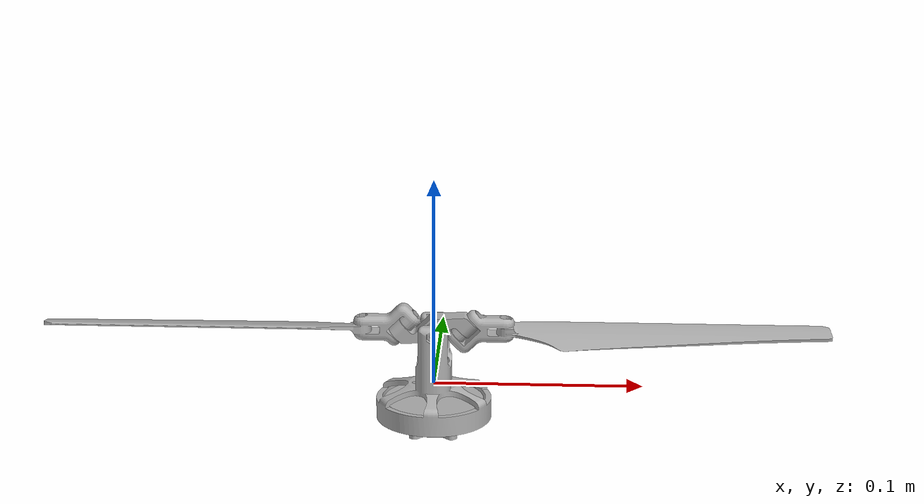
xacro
<?xml version="1.0" ?>
<robot name="40DegRotorAssembly" xmlns:xacro="http://www.ros.org/wiki/xacro">

<xacro:include filename="$(find 40DegRotorAssembly_description)/urdf/materials.xacro" />
<xacro:include filename="$(find 40DegRotorAssembly_description)/urdf/40DegRotorAssembly.trans" />
<xacro:include filename="$(find 40DegRotorAssembly_description)/urdf/40DegRotorAssembly.gazebo" />
<link name="base_link">
  <inertial>
    <origin xyz="7.735065992124888e-14 1.7881390223770156e-10 -0.013027047773476432" rpy="0 0 0"/>
    <mass value="0.06630753960006285"/>
    <inertia ixx="1e-05" iyy="1e-05" izz="1.8e-05" ixy="-0.0" iyz="-0.0" ixz="0.0"/>
  </inertial>
  <visual>
    <origin xyz="0 0 0" rpy="0 0 0"/>
    <geometry>
      <mesh filename="package://40DegRotorAssembly_description/meshes/base_link.stl" scale="0.001 0.001 0.001"/>
    </geometry>
    <material name="silver"/>
  </visual>
  <collision>
    <origin xyz="0 0 0" rpy="0 0 0"/>
    <geometry>
      <mesh filename="package://40DegRotorAssembly_description/meshes/base_link.stl" scale="0.001 0.001 0.001"/>
    </geometry>
  </collision>
</link>

<link name="hub_1">
  <inertial>
    <origin xyz="6.408040703700102e-08 4.521367438227419e-06 0.02115033137979168" rpy="0 0 0"/>
    <mass value="0.045875486442851464"/>
    <inertia ixx="1.6e-05" iyy="1.5e-05" izz="2e-05" ixy="-0.0" iyz="-0.0" ixz="0.0"/>
  </inertial>
  <visual>
    <origin xyz="0.0 -0.0 0.025" rpy="0 0 0"/>
    <geometry>
      <mesh filename="package://40DegRotorAssembly_description/meshes/hub_1.stl" scale="0.001 0.001 0.001"/>
    </geometry>
    <material name="silver"/>
  </visual>
  <collision>
    <origin xyz="0.0 -0.0 0.025" rpy="0 0 0"/>
    <geometry>
      <mesh filename="package://40DegRotorAssembly_description/meshes/hub_1.stl" scale="0.001 0.001 0.001"/>
    </geometry>
  </collision>
</link>

<link name="teetering_hub_1">
  <inertial>
    <origin xyz="2.3047318532386023e-16 -2.0023549347411018e-10 -2.5549701243576806e-13" rpy="0 0 0"/>
    <mass value="0.006675322687084224"/>
    <inertia ixx="0.0" iyy="1e-06" izz="1e-06" ixy="0.0" iyz="-0.0" ixz="-0.0"/>
  </inertial>
  <visual>
    <origin xyz="-0.0 0.0 -0.028" rpy="0 0 0"/>
    <geometry>
      <mesh filename="package://40DegRotorAssembly_description/meshes/teetering_hub_1.stl" scale="0.001 0.001 0.001"/>
    </geometry>
    <material name="silver"/>
  </visual>
  <collision>
    <origin xyz="-0.0 0.0 -0.028" rpy="0 0 0"/>
    <geometry>
      <mesh filename="package://40DegRotorAssembly_description/meshes/teetering_hub_1.stl" scale="0.001 0.001 0.001"/>
    </geometry>
  </collision>
</link>

<link name="side_hub_positive_1">
  <inertial>
    <origin xyz="-0.0574472904647423 0.000772192735747795 0.0005609882602239658" rpy="0 0 0"/>
    <mass value="0.009175981053557224"/>
    <inertia ixx="0.0" iyy="2.6e-05" izz="2.6e-05" ixy="0.0" iyz="0.0" ixz="-0.0"/>
  </inertial>
  <visual>
    <origin xyz="0.015 -0.0 -0.028" rpy="0 0 0"/>
    <geometry>
      <mesh filename="package://40DegRotorAssembly_description/meshes/side_hub_positive_1.stl" scale="0.001 0.001 0.001"/>
    </geometry>
    <material name="silver"/>
  </visual>
  <collision>
    <origin xyz="0.015 -0.0 -0.028" rpy="0 0 0"/>
    <geometry>
      <mesh filename="package://40DegRotorAssembly_description/meshes/side_hub_positive_1.stl" scale="0.001 0.001 0.001"/>
    </geometry>
  </collision>
</link>

<link name="side_hub_negative_1">
  <inertial>
    <origin xyz="0.05744729046094746 -0.0007721864572502097 -0.0009849110217392404" rpy="0 0 0"/>
    <mass value="0.009175981053061298"/>
    <inertia ixx="0.0" iyy="2.6e-05" izz="2.6e-05" ixy="0.0" iyz="-0.0" ixz="-0.0"/>
  </inertial>
  <visual>
    <origin xyz="-0.015 -0.0 -0.028" rpy="0 0 0"/>
    <geometry>
      <mesh filename="package://40DegRotorAssembly_description/meshes/side_hub_negative_1.stl" scale="0.001 0.001 0.001"/>
    </geometry>
    <material name="silver"/>
  </visual>
  <collision>
    <origin xyz="-0.015 -0.0 -0.028" rpy="0 0 0"/>
    <geometry>
      <mesh filename="package://40DegRotorAssembly_description/meshes/side_hub_negative_1.stl" scale="0.001 0.001 0.001"/>
    </geometry>
  </collision>
</link>

<joint name="Revolute 1" type="continuous">
  <origin xyz="0.0 0.0 -0.025" rpy="0 0 0"/>
  <parent link="base_link"/>
  <child link="hub_1"/>
  <axis xyz="0.0 -0.0 1.0"/>
</joint>

<joint name="Revolute 2" type="continuous">
  <origin xyz="0.0 -0.0 0.053" rpy="0 0 0"/>
  <parent link="hub_1"/>
  <child link="teetering_hub_1"/>
  <axis xyz="-0.0 -1.0 -0.0"/>
</joint>

<joint name="Revolute 6" type="continuous">
  <origin xyz="-0.015 0.0 0.0" rpy="0 0 0"/>
  <parent link="teetering_hub_1"/>
  <child link="side_hub_positive_1"/>
  <axis xyz="-0.707107 0.0 -0.707107"/>
</joint>

<joint name="Revolute 7" type="continuous">
  <origin xyz="0.015 0.0 0.0" rpy="0 0 0"/>
  <parent link="teetering_hub_1"/>
  <child link="side_hub_negative_1"/>
  <axis xyz="-0.707107 0.0 -0.707107"/>
</joint>

</robot>

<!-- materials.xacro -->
<robot name="40DegRotorAssembly" xmlns:xacro="http://www.ros.org/wiki/xacro" >

<material name="silver">
  <color rgba="0.700 0.700 0.700 1.000"/>
</material>

</robot>

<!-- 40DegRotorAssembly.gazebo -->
<robot name="40DegRotorAssembly" xmlns:xacro="http://www.ros.org/wiki/xacro" >

<xacro:property name="body_color" value="Gazebo/Silver" />

<gazebo>
  <plugin name="control" filename="libgazebo_ros_control.so"/>
</gazebo>
<gazebo reference="base_link">
  <material>${body_color}</material>
  <mu1>0.2</mu1>
  <mu2>0.2</mu2>
  <selfCollide>true</selfCollide>
  <gravity>true</gravity>
</gazebo>

<gazebo reference="hub_1">
  <material>${body_color}</material>
  <mu1>0.2</mu1>
  <mu2>0.2</mu2>
  <selfCollide>true</selfCollide>
</gazebo>

<gazebo reference="teetering_hub_1">
  <material>${body_color}</material>
  <mu1>0.2</mu1>
  <mu2>0.2</mu2>
  <selfCollide>true</selfCollide>
</gazebo>

<gazebo reference="side_hub_positive_1">
  <material>${body_color}</material>
  <mu1>0.2</mu1>
  <mu2>0.2</mu2>
  <selfCollide>true</selfCollide>
</gazebo>

<gazebo reference="side_hub_negative_1">
  <material>${body_color}</material>
  <mu1>0.2</mu1>
  <mu2>0.2</mu2>
  <selfCollide>true</selfCollide>
</gazebo>

</robot>
